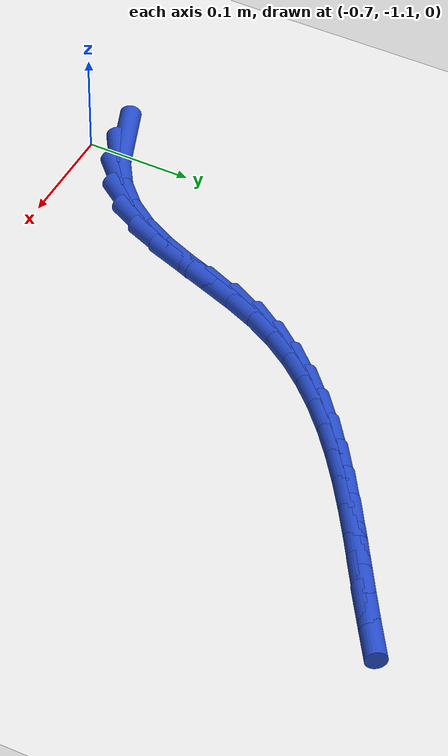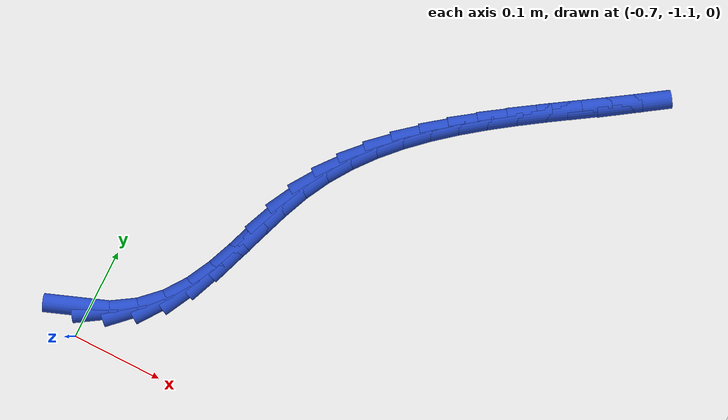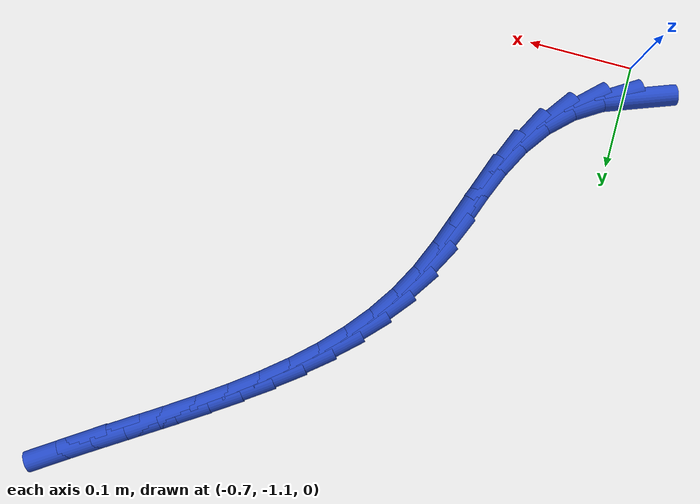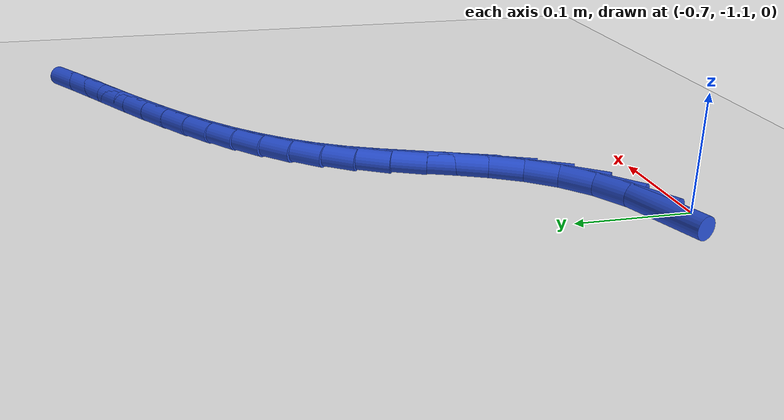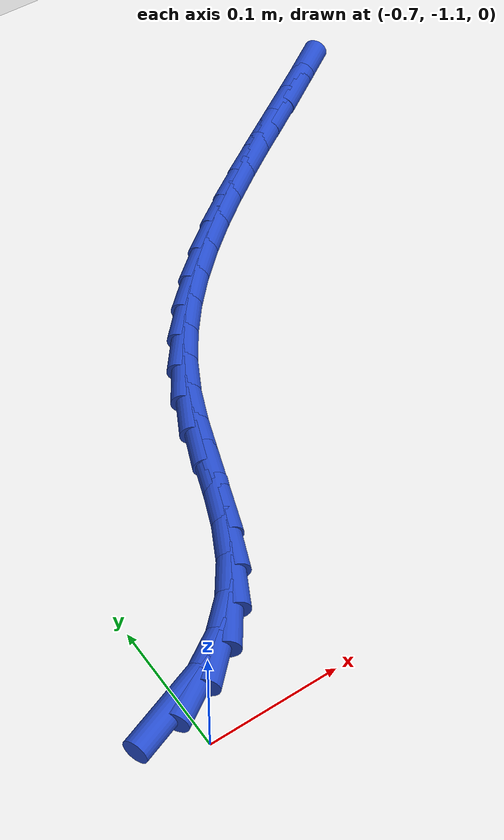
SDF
<sdf version="1.6">
 <world name="default">
  <model name="ground_plane">
   <static>1</static>
   <link name="link">
    <collision name="collision">
     <geometry><plane><normal>0 0 1</normal><size>100 100</size></plane></geometry>
     <surface><friction><ode><mu>100</mu><mu2>50</mu2></ode></friction></surface>
    </collision>
    <visual name="visual">
     <cast_shadows>0</cast_shadows>
     <geometry><plane><normal>0 0 1</normal><size>100 100</size></plane></geometry>
     <material>
      <script><uri>file://media/materials/scripts/gazebo.material</uri><name>Gazebo/WhiteGlow</name></script>
     </material>
    </visual>
   </link>
  </model>
  <model name="line">
   <link name="link_216">
    <pose>-0.7081665718144932 -1.068760759142242 0.01 0 1.57 0.35767853690684226</pose>
    <collision name="collision">
     <geometry><cylinder><radius>0.01</radius><length>0.08</length></cylinder></geometry>
    </collision>
    <visual name="visual">
     <material>
      <script><name>Gazebo/Blue</name><uri>file://media/materials/scripts/gazebo.material</uri></script>
     </material>
     <geometry><cylinder><radius>0.01</radius><length>0.08</length></cylinder></geometry>
    </visual>
   </link>
   <link name="link_217">
    <pose>-0.679274025306407 -1.057962031349109 0.01 0 1.57 0.5693118662598353</pose>
    <collision name="collision">
     <geometry><cylinder><radius>0.01</radius><length>0.08</length></cylinder></geometry>
    </collision>
    <visual name="visual">
     <material>
      <script><name>Gazebo/Blue</name><uri>file://media/materials/scripts/gazebo.material</uri></script>
     </material>
     <geometry><cylinder><radius>0.01</radius><length>0.08</length></cylinder></geometry>
    </visual>
   </link>
   <link name="link_218">
    <pose>-0.6532937865292474 -1.041334727049668 0.01 0 1.57 0.7649183638700936</pose>
    <collision name="collision">
     <geometry><cylinder><radius>0.01</radius><length>0.08</length></cylinder></geometry>
    </collision>
    <visual name="visual">
     <material>
      <script><name>Gazebo/Blue</name><uri>file://media/materials/scripts/gazebo.material</uri></script>
     </material>
     <geometry><cylinder><radius>0.01</radius><length>0.08</length></cylinder></geometry>
    </visual>
   </link>
   <link name="link_219">
    <pose>-0.6311411063951223 -1.0200713239278674 0.01 0 1.57 0.9471080557507239</pose>
    <collision name="collision">
     <geometry><cylinder><radius>0.01</radius><length>0.08</length></cylinder></geometry>
    </collision>
    <visual name="visual">
     <material>
      <script><name>Gazebo/Blue</name><uri>file://media/materials/scripts/gazebo.material</uri></script>
     </material>
     <geometry><cylinder><radius>0.01</radius><length>0.08</length></cylinder></geometry>
    </visual>
   </link>
   <link name="link_220">
    <pose>-0.6134389847956458 -0.9954676774992713 0.01 0 1.57 1.0902893255080766</pose>
    <collision name="collision">
     <geometry><cylinder><radius>0.01</radius><length>0.08</length></cylinder></geometry>
    </collision>
    <visual name="visual">
     <material>
      <script><name>Gazebo/Blue</name><uri>file://media/materials/scripts/gazebo.material</uri></script>
     </material>
     <geometry><cylinder><radius>0.01</radius><length>0.08</length></cylinder></geometry>
    </visual>
   </link>
   <link name="link_221">
    <pose>-0.5993650623753244 -0.9684676280403607 0.01 0 1.57 1.1826119879581058</pose>
    <collision name="collision">
     <geometry><cylinder><radius>0.01</radius><length>0.08</length></cylinder></geometry>
    </collision>
    <visual name="visual">
     <material>
      <script><name>Gazebo/Blue</name><uri>file://media/materials/scripts/gazebo.material</uri></script>
     </material>
     <geometry><cylinder><radius>0.01</radius><length>0.08</length></cylinder></geometry>
    </visual>
   </link>
   <link name="link_222">
    <pose>-0.5876892083219188 -0.9399157036551384 0.01 0 1.57 1.2260094432873185</pose>
    <collision name="collision">
     <geometry><cylinder><radius>0.01</radius><length>0.08</length></cylinder></geometry>
    </collision>
    <visual name="visual">
     <material>
      <script><name>Gazebo/Blue</name><uri>file://media/materials/scripts/gazebo.material</uri></script>
     </material>
     <geometry><cylinder><radius>0.01</radius><length>0.08</length></cylinder></geometry>
    </visual>
   </link>
   <link name="link_223">
    <pose>-0.5771812679960063 -0.9106564266445307 0.01 0 1.57 1.2226221831943929</pose>
    <collision name="collision">
     <geometry><cylinder><radius>0.01</radius><length>0.08</length></cylinder></geometry>
    </collision>
    <visual name="visual">
     <material>
      <script><name>Gazebo/Blue</name><uri>file://media/materials/scripts/gazebo.material</uri></script>
     </material>
     <geometry><cylinder><radius>0.01</radius><length>0.08</length></cylinder></geometry>
    </visual>
   </link>
   <link name="link_224">
    <pose>-0.5666110867581639 -0.8815343193094636 0.01 0 1.57 1.1718519475222722</pose>
    <collision name="collision">
     <geometry><cylinder><radius>0.01</radius><length>0.08</length></cylinder></geometry>
    </collision>
    <visual name="visual">
     <material>
      <script><name>Gazebo/Blue</name><uri>file://media/materials/scripts/gazebo.material</uri></script>
     </material>
     <geometry><cylinder><radius>0.01</radius><length>0.08</length></cylinder></geometry>
    </visual>
   </link>
   <link name="link_225">
    <pose>-0.5547485099689684 -0.8533939039508627 0.01 0 1.57 1.077877946070596</pose>
    <collision name="collision">
     <geometry><cylinder><radius>0.01</radius><length>0.08</length></cylinder></geometry>
    </collision>
    <visual name="visual">
     <material>
      <script><name>Gazebo/Blue</name><uri>file://media/materials/scripts/gazebo.material</uri></script>
     </material>
     <geometry><cylinder><radius>0.01</radius><length>0.08</length></cylinder></geometry>
    </visual>
   </link>
   <link name="link_226">
    <pose>-0.5405460174780444 -0.8269530842624805 0.01 0 1.57 0.9786864592110364</pose>
    <collision name="collision">
     <geometry><cylinder><radius>0.01</radius><length>0.08</length></cylinder></geometry>
    </collision>
    <visual name="visual">
     <material>
      <script><name>Gazebo/Blue</name><uri>file://media/materials/scripts/gazebo.material</uri></script>
     </material>
     <geometry><cylinder><radius>0.01</radius><length>0.08</length></cylinder></geometry>
    </visual>
   </link>
   <link name="link_227">
    <pose>-0.52393232094964 -0.8022529524919334 0.01 0 1.57 0.8893339350049092</pose>
    <collision name="collision">
     <geometry><cylinder><radius>0.01</radius><length>0.08</length></cylinder></geometry>
    </collision>
    <visual name="visual">
     <material>
      <script><name>Gazebo/Blue</name><uri>file://media/materials/scripts/gazebo.material</uri></script>
     </material>
     <geometry><cylinder><radius>0.01</radius><length>0.08</length></cylinder></geometry>
    </visual>
   </link>
   <link name="link_228">
    <pose>-0.5051609735719154 -0.7791093916094213 0.01 0 1.57 0.8112139757463563</pose>
    <collision name="collision">
     <geometry><cylinder><radius>0.01</radius><length>0.08</length></cylinder></geometry>
    </collision>
    <visual name="visual">
     <material>
      <script><name>Gazebo/Blue</name><uri>file://media/materials/scripts/gazebo.material</uri></script>
     </material>
     <geometry><cylinder><radius>0.01</radius><length>0.08</length></cylinder></geometry>
    </visual>
   </link>
   <link name="link_229">
    <pose>-0.48448574822081814 -0.7573381322778651 0.01 0 1.57 0.7448200793679193</pose>
    <collision name="collision">
     <geometry><cylinder><radius>0.01</radius><length>0.08</length></cylinder></geometry>
    </collision>
    <visual name="visual">
     <material>
      <script><name>Gazebo/Blue</name><uri>file://media/materials/scripts/gazebo.material</uri></script>
     </material>
     <geometry><cylinder><radius>0.01</radius><length>0.08</length></cylinder></geometry>
    </visual>
   </link>
   <link name="link_230">
    <pose>-0.46216041777229716 -0.7367549051601874 0.01 0 1.57 0.6900280723616494</pose>
    <collision name="collision">
     <geometry><cylinder><radius>0.01</radius><length>0.08</length></cylinder></geometry>
    </collision>
    <visual name="visual">
     <material>
      <script><name>Gazebo/Blue</name><uri>file://media/materials/scripts/gazebo.material</uri></script>
     </material>
     <geometry><cylinder><radius>0.01</radius><length>0.08</length></cylinder></geometry>
    </visual>
   </link>
   <link name="link_231">
    <pose>-0.4384387551023006 -0.7171754409193097 0.01 0 1.57 0.646372719923745</pose>
    <collision name="collision">
     <geometry><cylinder><radius>0.01</radius><length>0.08</length></cylinder></geometry>
    </collision>
    <visual name="visual">
     <material>
      <script><name>Gazebo/Blue</name><uri>file://media/materials/scripts/gazebo.material</uri></script>
     </material>
     <geometry><cylinder><radius>0.01</radius><length>0.08</length></cylinder></geometry>
    </visual>
   </link>
   <link name="link_232">
    <pose>-0.4135745330867765 -0.698415470218154 0.01 0 1.57 0.6132660140278461</pose>
    <collision name="collision">
     <geometry><cylinder><radius>0.01</radius><length>0.08</length></cylinder></geometry>
    </collision>
    <visual name="visual">
     <material>
      <script><name>Gazebo/Blue</name><uri>file://media/materials/scripts/gazebo.material</uri></script>
     </material>
     <geometry><cylinder><radius>0.01</radius><length>0.08</length></cylinder></geometry>
    </visual>
   </link>
   <link name="link_233">
    <pose>-0.3878215246016731 -0.6802907237196418 0.01 0 1.57 0.5901450088582056</pose>
    <collision name="collision">
     <geometry><cylinder><radius>0.01</radius><length>0.08</length></cylinder></geometry>
    </collision>
    <visual name="visual">
     <material>
      <script><name>Gazebo/Blue</name><uri>file://media/materials/scripts/gazebo.material</uri></script>
     </material>
     <geometry><cylinder><radius>0.01</radius><length>0.08</length></cylinder></geometry>
    </visual>
   </link>
   <link name="link_234">
    <pose>-0.36143350252293865 -0.6626169320866951 0.01 0 1.57 0.5765612648277038</pose>
    <collision name="collision">
     <geometry><cylinder><radius>0.01</radius><length>0.08</length></cylinder></geometry>
    </collision>
    <visual name="visual">
     <material>
      <script><name>Gazebo/Blue</name><uri>file://media/materials/scripts/gazebo.material</uri></script>
     </material>
     <geometry><cylinder><radius>0.01</radius><length>0.08</length></cylinder></geometry>
    </visual>
   </link>
   <link name="link_235">
    <pose>-0.33466423972652126 -0.6452098259822355 0.01 0 1.57 0.5722296937969814</pose>
    <collision name="collision">
     <geometry><cylinder><radius>0.01</radius><length>0.08</length></cylinder></geometry>
    </collision>
    <visual name="visual">
     <material>
      <script><name>Gazebo/Blue</name><uri>file://media/materials/scripts/gazebo.material</uri></script>
     </material>
     <geometry><cylinder><radius>0.01</radius><length>0.08</length></cylinder></geometry>
    </visual>
   </link>
   <link name="link_236">
    <pose>-0.3077675090883684 -0.6278851360691845 0.01 0 1.57 0.5770515455848074</pose>
    <collision name="collision">
     <geometry><cylinder><radius>0.01</radius><length>0.08</length></cylinder></geometry>
    </collision>
    <visual name="visual">
     <material>
      <script><name>Gazebo/Blue</name><uri>file://media/materials/scripts/gazebo.material</uri></script>
     </material>
     <geometry><cylinder><radius>0.01</radius><length>0.08</length></cylinder></geometry>
    </visual>
   </link>
   <link name="link_237">
    <pose>-0.28099708348443003 -0.610458593010465 0.01 0 1.57 0.5911205039317813</pose>
    <collision name="collision">
     <geometry><cylinder><radius>0.01</radius><length>0.08</length></cylinder></geometry>
    </collision>
    <visual name="visual">
     <material>
      <script><name>Gazebo/Blue</name><uri>file://media/materials/scripts/gazebo.material</uri></script>
     </material>
     <geometry><cylinder><radius>0.01</radius><length>0.08</length></cylinder></geometry>
    </visual>
   </link>
  </model>
 </world>
</sdf>
